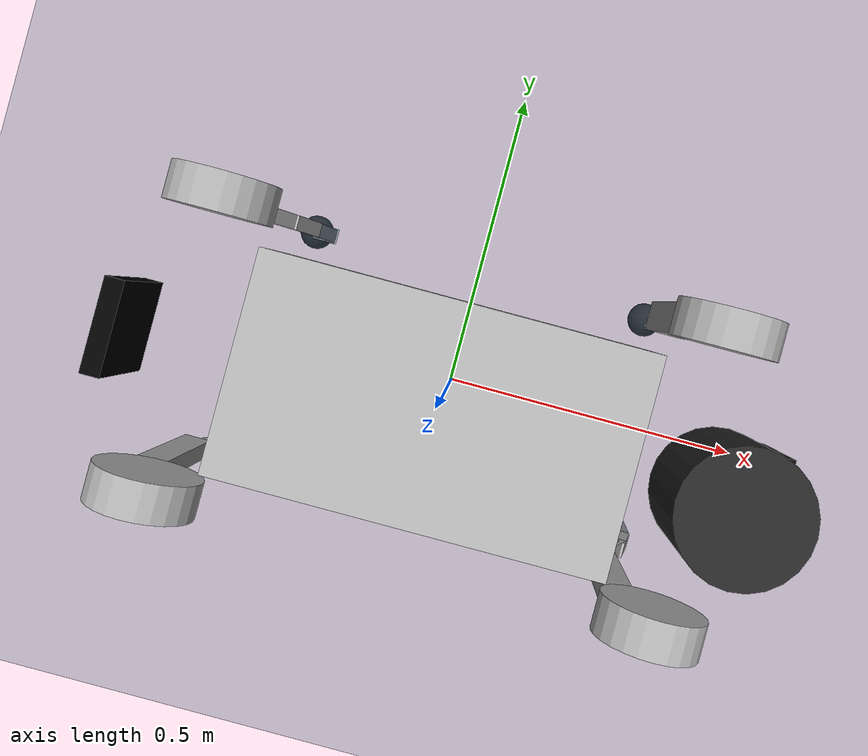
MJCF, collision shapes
<mujoco model="b2 flat scene">
  <include file="b2.xml"/>

  <statistic center="0 0 0.3" extent="1.5"/>

  <visual>
    <headlight diffuse="0.6 0.6 0.6" ambient="0.3 0.3 0.3" specular="0 0 0"/>
    <rgba haze="0.15 0.25 0.35 1"/>
    <global azimuth="90" elevation="-20"/>
  </visual>

  <asset>
    <texture type="skybox" builtin="gradient" rgb1="0.3 0.5 0.7" rgb2="0 0 0" width="512" height="3072"/>
    <texture type="2d" name="groundplane" builtin="checker" mark="edge" rgb1="0.2 0.3 0.4" rgb2="0.1 0.2 0.3"
      markrgb="0.8 0.8 0.8" width="300" height="300"/>
    <material name="groundplane" texture="groundplane" texuniform="true" texrepeat="5 5" reflectance="0.2"/>
  </asset>

  <worldbody>
    <light pos="0 0 1.5" dir="0 0 -1" directional="true"/>
    <geom name="floor" size="0 0 0.05" type="plane" material="groundplane" condim="3" friction="0.8 0.2 0.1"/>
  </worldbody>
</mujoco>

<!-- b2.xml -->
<mujoco model="b2">
  <compiler angle="radian" meshdir="meshes" autolimits="true"/>

  <default>
    <default class="b2">
      <geom type="mesh"/>
      <joint damping="0.5" armature="0.2"/>
      <default class="visual">
        <geom contype="0" conaffinity="0" group="2"/>
      </default>
      <default class="collision">
        <geom group="3" mass="0" density="0"/>
      </default>
      <site size="0.001" rgba="0.5 0.5 0.5 0.3" group="4"/>
    </default>
  </default>

  <asset>
    <mesh name="base_link" file="base_link.obj"/>
    <mesh name="logo_left" file="logo_left.obj"/>
    <mesh name="logo_right" file="logo_right.obj"/>
    <mesh name="unitree_ladar" file="unitree_ladar.obj"/>
    <mesh name="f_dc_link" file="f_dc_link.obj"/>
    <mesh name="r_dc_link" file="r_dc_link.obj"/>
    <mesh name="fake_imu_link" file="fake_imu_link.STL"/>
    <mesh name="fake_head_Link" file="fake_head_Link.STL"/>
    <mesh name="fake_tail_link" file="fake_tail_link.STL"/>
    <mesh name="FL_hip" file="FL_hip.obj"/>
    <mesh name="FL_thigh" file="FL_thigh.obj"/>
    <mesh name="FL_thigh_protect" file="FL_thigh_protect.obj"/>
    <mesh name="FL_calf" file="FL_calf.obj"/>
    <mesh name="FL_foot" file="FL_foot.obj"/>
    <mesh name="FR_hip" file="FR_hip.obj"/>
    <mesh name="FR_thigh" file="FR_thigh.obj"/>
    <mesh name="FR_thigh_protect" file="FR_thigh_protect.obj"/>
    <mesh name="FR_calf" file="FR_calf.obj"/>
    <mesh name="FR_foot" file="FR_foot.obj"/>
    <mesh name="RL_hip" file="RL_hip.obj"/>
    <mesh name="RL_thigh" file="RL_thigh.obj"/>
    <mesh name="RL_thigh_protect" file="RL_thigh_protect.obj"/>
    <mesh name="RL_calf" file="RL_calf.obj"/>
    <mesh name="RL_foot" file="RL_foot.obj"/>
    <mesh name="RR_hip" file="RR_hip.obj"/>
    <mesh name="RR_thigh" file="RR_thigh.obj"/>
    <mesh name="RR_thigh_protect" file="RR_thigh_protect.obj"/>
    <mesh name="RR_calf" file="RR_calf.obj"/>
    <mesh name="RR_foot" file="RR_foot.obj"/>
    <mesh name="f_oc_link" file="f_oc_link.obj"/>
    <mesh name="r_oc_link" file="r_oc_link.obj"/>
  </asset>
  <worldbody>
    <body name="base_link" pos="0 0 0.5" childclass="b2">
      <inertial pos="0.0212868 0.0045819 0.0106169" quat="0.00178111 0.675412 -0.000262894 0.737438" mass="35.86" diaginertia="1.73786 1.66448 0.343734"/>
      <joint name="floating_base_joint" type="free"/>
      <geom type="mesh" contype="0" conaffinity="0" group="1" density="0" rgba="0.7 0.7 0.7 1" mesh="base_link"/>
      <geom size="0.25 0.14 0.075" type="box" rgba="0.7 0.7 0.7 1" class="collision"/>
      <geom type="mesh" contype="0" conaffinity="0" group="1" density="0" rgba="1 1 1 1" mesh="logo_left"/>
      <geom type="mesh" contype="0" conaffinity="0" group="1" density="0" rgba="1 1 1 1" mesh="logo_right"/>
      <geom pos="0.34218 0 0.17851" type="mesh" contype="0" conaffinity="0" group="1" density="0" rgba="0.15 0.15 0.15 1" mesh="unitree_ladar"/>
      <geom size="0.076 0.08" pos="0.34218 0 0.15851" type="cylinder" rgba="0.15 0.15 0.15 1" class="collision"/>
      <geom pos="0.841724 -4.57659e-06 0.130379" quat="0.00244632 3.13845e-06 0.999997 1.29099e-06" type="mesh" contype="0" conaffinity="0" group="1" density="0" rgba="0 0 0 1" mesh="f_dc_link"/>
      <geom pos="-0.378319 0.000200109 -0.379902" quat="-1.30076e-06 -0.708662 5.35065e-07 0.705548" type="mesh" contype="0" conaffinity="0" group="1" density="0" rgba="0 0 0 1" mesh="r_dc_link"/>
      <geom pos="0 -0.02341 0.04927" type="mesh" contype="0" conaffinity="0" group="1" density="0" rgba="0 0 0 1" mesh="fake_imu_link"/>
      <geom type="mesh" contype="0" conaffinity="0" group="1" density="0" rgba="0 0 0 1" mesh="fake_head_Link"/>
      <geom size="0.02 0.06 0.07" pos="0.41 0 0.005" type="box" rgba="0 0 0 1" class="collision"/>
      <geom type="mesh" contype="0" conaffinity="0" group="1" density="0" rgba="0 0 0 1" mesh="fake_tail_link"/>
      <geom size="0.0125 0.06 0.07" pos="-0.405 0 0.005" type="box" rgba="0 0 0 1" class="collision"/>
      <geom pos="0.84158 -0.0134347 -0.0134347" quat="-3.89602e-06 1.29867e-06 0.707107 -0.707107" type="mesh" contype="0" conaffinity="0" group="1" density="0" rgba="0 0 0 1" mesh="f_oc_link"/>
      <geom pos="-0.00451008 0.0252504 -0.0262476" quat="0.707107 -0.707107 -1.29867e-06 -1.29867e-06" type="mesh" contype="0" conaffinity="0" group="1" density="0" rgba="0 0 0 1" mesh="r_oc_link"/>
      <site name="imu" pos="0 -0.02341 0.04927"/>
      <body name="FL_hip" pos="0.3285 0.072 0">
        <inertial pos="-0.00348459 -0.00896704 0" quat="0.511347 0.510967 0.488412 0.488763" mass="2.9464" diaginertia="0.00502561 0.00397571 0.00346037"/>
        <joint name="FL_hip_joint" pos="0 0 0" axis="1 0 0" range="-0.87 0.87"/>
        <geom type="mesh" contype="0" conaffinity="0" group="1" density="0" rgba="0.7 0.7 0.7 1" mesh="FL_hip"/>
        <geom size="0.07 0.025" pos="0 0.12 0" quat="0.707107 0.707107 0 0" type="cylinder" rgba="0.7 0.7 0.7 1" class="collision"/>
        <body name="FL_thigh" pos="0 0.11973 0">
          <inertial pos="-0.00592206 -0.0335174 -0.0545473" quat="0.910035 0.0855949 -0.000888135 0.405597" mass="4.8094" diaginertia="0.0640934 0.0634463 0.00699942"/>
          <joint name="FL_thigh_joint" pos="0 0 0" axis="0 1 0" range="-0.94 4.69"/>
          <geom type="mesh" contype="0" conaffinity="0" group="1" density="0" rgba="0.7 0.7 0.7 1" mesh="FL_thigh"/>
          <geom size="0.16 0.02225 0.027" pos="-0.025 0 -0.16" quat="0.707388 0 0.706825 0" type="box" rgba="0.7 0.7 0.7 1" class="collision"/>
          <geom type="mesh" contype="0" conaffinity="0" group="1" density="0" rgba="0.65 0.68 0.65 1" mesh="FL_thigh_protect"/>
          <body name="FL_calf" pos="0 -8.6984e-05 -0.35">
            <inertial pos="0.00792095 0 -0.180895" quat="0.70709 -0.00488772 -0.00488772 0.70709" mass="0.53" diaginertia="0.0169205 0.0167822 0.000404298"/>
            <joint name="FL_calf_joint" pos="0 0 0" axis="0 1 0" range="-2.82 -0.43"/>
            <geom type="mesh" contype="0" conaffinity="0" group="1" density="0" rgba="0.7 0.7 0.7 1" mesh="FL_calf"/>
            <geom size="0.05 0.01225 0.009" pos="-0.002 0 -0.03" quat="0.825336 0 0.564642 0" type="box" rgba="0.7 0.7 0.7 1" class="collision"/>
            <geom size="0.05 0.01225 0.009" pos="0.022 0 -0.1" quat="0.780707 0 0.624897 0" type="box" rgba="0.7 0.7 0.7 1" class="collision"/>
            <geom size="0.075 0.01225 0.0075" pos="0.036 0 -0.225" quat="0.721382 0 0.692537 0" type="box" rgba="0.7 0.7 0.7 1" class="collision"/>
            <geom size="0.025 0.014 0.0175" pos="0.023 0 -0.31" quat="0.540302 0 0.841471 0" type="box" rgba="0.7 0.7 0.7 1" class="collision"/>
            <geom pos="0 8.6986e-05 0" type="mesh" contype="0" conaffinity="0" group="1" density="0" rgba="0.15 0.15 0.15 1" mesh="FL_foot" friction="0.8 0.005 0.0001" solref="0.005 1" solimp="0.9 0.95 0.001"/>
            <geom size="0.032" pos="0 8.6986e-05 -0.35" quat="0.707388 0.706825 0 0" type="sphere" rgba="0.15 0.15 0.15 1" class="collision" friction="0.8 0.005 0.0001" solref="0.005 1" solimp="0.9 0.95 0.001"/>
          </body>
        </body>
      </body>
      <body name="FR_hip" pos="0.3285 -0.072 0">
        <inertial pos="-0.00844158 0.0100194 0.000239503" quat="0.476608 0.477229 0.518954 0.525151" mass="2.9464" diaginertia="0.00485575 0.00370656 0.00277186"/>
        <joint name="FR_hip_joint" pos="0 0 0" axis="1 0 0" range="-0.87 0.87"/>
        <geom type="mesh" contype="0" conaffinity="0" group="1" density="0" rgba="0.7 0.7 0.7 1" mesh="FR_hip"/>
        <geom size="0.07 0.025" pos="0 -0.12 0" quat="0.707107 0.707107 0 0" type="cylinder" rgba="0.7 0.7 0.7 1" class="collision"/>
        <body name="FR_thigh" pos="0 -0.11973 0">
          <inertial pos="-0.00592206 0.0335174 -0.0545473" quat="0.40566 -0.000894103 0.0855942 0.910007" mass="4.8094" diaginertia="0.0640936 0.0634464 0.00699948"/>
          <joint name="FR_thigh_joint" pos="0 0 0" axis="0 1 0" range="-0.94 4.69"/>
          <geom type="mesh" contype="0" conaffinity="0" group="1" density="0" rgba="0.7 0.7 0.7 1" mesh="FR_thigh"/>
          <geom size="0.125 0.014 0.02" pos="-0.03 0 -0.2" quat="0.707388 0 0.706825 0" type="box" rgba="0.7 0.7 0.7 1" class="collision"/>
          <geom type="mesh" contype="0" conaffinity="0" group="1" density="0" rgba="0.65 0.68 0.65 1" mesh="FR_thigh_protect"/>
          <body name="FR_calf" pos="0 8.6986e-05 -0.35">
            <inertial pos="0.00792095 0 -0.180895" quat="0.70709 -0.00488772 -0.00488772 0.70709" mass="0.53" diaginertia="0.0169205 0.0167822 0.000404298"/>
            <joint name="FR_calf_joint" pos="0 0 0" axis="0 1 0" range="-2.82 -0.43"/>
            <geom type="mesh" contype="0" conaffinity="0" group="1" density="0" rgba="0.7 0.7 0.7 1" mesh="FR_calf"/>
            <geom size="0.05 0.01225 0.009" pos="-0.002 0 -0.03" quat="0.825336 0 0.564642 0" type="box" rgba="0.7 0.7 0.7 1" class="collision"/>
            <geom size="0.05 0.01225 0.009" pos="0.022 0 -0.1" quat="0.780707 0 0.624897 0" type="box" rgba="0.7 0.7 0.7 1" class="collision"/>
            <geom size="0.075 0.01225 0.0075" pos="0.036 0 -0.225" quat="0.721382 0 0.692537 0" type="box" rgba="0.7 0.7 0.7 1" class="collision"/>
            <geom size="0.025 0.014 0.0175" pos="0.023 0 -0.31" quat="0.540302 0 0.841471 0" type="box" rgba="0.7 0.7 0.7 1" class="collision"/>
            <geom type="mesh" contype="0" conaffinity="0" group="1" density="0" rgba="0.15 0.15 0.15 1" mesh="FR_foot" friction="0.8 0.005 0.0001" solref="0.005 1" solimp="0.9 0.95 0.001"/>
            <geom size="0.032" pos="0 8.6986e-05 -0.35" quat="0.707388 0.706825 0 0" type="sphere" rgba="0.15 0.15 0.15 1" class="collision" friction="0.8 0.005 0.0001" solref="0.005 1" solimp="0.9 0.95 0.001"/>
          </body>
        </body>
      </body>
      <body name="RL_hip" pos="-0.3285 0.072 0">
        <inertial pos="0.00844158 -0.0100194 0.000239503" quat="0.477229 0.476608 0.525151 0.518954" mass="2.9464" diaginertia="0.00485575 0.00370656 0.00277186"/>
        <joint name="RL_hip_joint" pos="0 0 0" axis="1 0 0" range="-0.87 0.87"/>
        <geom type="mesh" contype="0" conaffinity="0" group="1" density="0" rgba="0.7 0.7 0.7 1" mesh="RL_hip"/>
        <geom size="0.07 0.025" pos="0 0.12 0" quat="0.707107 0.707107 0 0" type="cylinder" rgba="0.7 0.7 0.7 1" class="collision"/>
        <body name="RL_thigh" pos="0 0.11973 0">
          <inertial pos="-0.00592206 -0.0335174 -0.0545473" quat="0.910007 0.0855942 -0.000894103 0.40566" mass="4.8094" diaginertia="0.0640936 0.0634464 0.00699948"/>
          <joint name="RL_thigh_joint" pos="0 0 0" axis="0 1 0" range="-0.94 4.69"/>
          <geom type="mesh" contype="0" conaffinity="0" group="1" density="0" rgba="0.7 0.7 0.7 1" mesh="RL_thigh"/>
          <geom size="0.125 0.014 0.02" pos="-0.03 0 -0.2" quat="0.707388 0 0.706825 0" type="box" rgba="0.7 0.7 0.7 1" class="collision"/>
          <geom type="mesh" contype="0" conaffinity="0" group="1" density="0" rgba="0.65 0.68 0.65 1" mesh="RL_thigh_protect"/>
          <body name="RL_calf" pos="0 -8.6984e-05 -0.35">
            <inertial pos="0.00792095 0 -0.180895" quat="0.70709 -0.00488772 -0.00488772 0.70709" mass="0.53" diaginertia="0.0169205 0.0167822 0.000404298"/>
            <joint name="RL_calf_joint" pos="0 0 0" axis="0 1 0" range="-2.82 -0.43"/>
            <geom type="mesh" contype="0" conaffinity="0" group="1" density="0" rgba="0.7 0.7 0.7 1" mesh="RL_calf"/>
            <geom size="0.05 0.01225 0.009" pos="-0.002 0 -0.03" quat="0.825336 0 0.564642 0" type="box" rgba="0.7 0.7 0.7 1" class="collision"/>
            <geom size="0.05 0.01225 0.009" pos="0.022 0 -0.1" quat="0.780707 0 0.624897 0" type="box" rgba="0.7 0.7 0.7 1" class="collision"/>
            <geom size="0.075 0.01225 0.0075" pos="0.036 0 -0.225" quat="0.721382 0 0.692537 0" type="box" rgba="0.7 0.7 0.7 1" class="collision"/>
            <geom size="0.025 0.014 0.0175" pos="0.023 0 -0.31" quat="0.540302 0 0.841471 0" type="box" rgba="0.7 0.7 0.7 1" class="collision"/>
            <geom pos="0 8.6986e-05 0" type="mesh" contype="0" conaffinity="0" group="1" density="0" rgba="0.15 0.15 0.15 1" mesh="RL_foot" friction="0.8 0.005 0.0001" solref="0.005 1" solimp="0.9 0.95 0.001"/>
            <geom size="0.032" pos="0 8.6986e-05 -0.35" quat="0.707388 0.706825 0 0" type="sphere" rgba="0.15 0.15 0.15 1" class="collision" friction="0.8 0.005 0.0001" solref="0.005 1" solimp="0.9 0.95 0.001"/>
          </body>
        </body>
      </body>
      <body name="RR_hip" pos="-0.3285 -0.072 0">
        <inertial pos="0.00348459 0.00896704 0" quat="0.510967 0.511347 0.488763 0.488412" mass="2.9464" diaginertia="0.00502561 0.00397571 0.00346037"/>
        <joint name="RR_hip_joint" pos="0 0 0" axis="1 0 0" range="-0.87 0.87"/>
        <geom type="mesh" contype="0" conaffinity="0" group="1" density="0" rgba="0.7 0.7 0.7 1" mesh="RR_hip"/>
        <geom size="0.07 0.025" pos="0 -0.12 0" quat="0.707107 0.707107 0 0" type="cylinder" rgba="0.7 0.7 0.7 1" class="collision"/>
        <body name="RR_thigh" pos="0 -0.11973 0">
          <inertial pos="-0.00592206 0.0335174 -0.0545473" quat="0.405597 -0.000888135 0.0855949 0.910035" mass="4.8094" diaginertia="0.0640934 0.0634463 0.00699942"/>
          <joint name="RR_thigh_joint" pos="0 0 0" axis="0 1 0" range="-0.94 4.69"/>
          <geom type="mesh" contype="0" conaffinity="0" group="1" density="0" rgba="0.7 0.7 0.7 1" mesh="RR_thigh"/>
          <geom size="0.125 0.014 0.02" pos="-0.03 0 -0.2" quat="0.707388 0 0.706825 0" type="box" rgba="0.7 0.7 0.7 1" class="collision"/>
          <geom type="mesh" contype="0" conaffinity="0" group="1" density="0" rgba="0.65 0.68 0.65 1" mesh="RR_thigh_protect"/>
          <body name="RR_calf" pos="0 8.6986e-05 -0.35">
            <inertial pos="0.00792095 0 -0.180895" quat="0.70709 -0.00488772 -0.00488772 0.70709" mass="0.53" diaginertia="0.0169205 0.0167822 0.000404298"/>
            <joint name="RR_calf_joint" pos="0 0 0" axis="0 1 0" range="-2.82 -0.43"/>
            <geom type="mesh" contype="0" conaffinity="0" group="1" density="0" rgba="0.7 0.7 0.7 1" mesh="RR_calf"/>
            <geom size="0.05 0.01225 0.009" pos="-0.002 0 -0.03" quat="0.825336 0 0.564642 0" type="box" rgba="0.7 0.7 0.7 1" class="collision"/>
            <geom size="0.05 0.01225 0.009" pos="0.022 0 -0.1" quat="0.780707 0 0.624897 0" type="box" rgba="0.7 0.7 0.7 1" class="collision"/>
            <geom size="0.075 0.01225 0.0075" pos="0.036 0 -0.225" quat="0.721382 0 0.692537 0" type="box" rgba="0.7 0.7 0.7 1" class="collision"/>
            <geom size="0.025 0.014 0.0175" pos="0.023 0 -0.31" quat="0.540302 0 0.841471 0" type="box" rgba="0.7 0.7 0.7 1" class="collision"/>
            <geom pos="0 -8.6984e-05 0" type="mesh" contype="0" conaffinity="0" group="1" density="0" rgba="0.15 0.15 0.15 1" mesh="RR_foot" friction="0.8 0.005 0.0001" solref="0.005 1" solimp="0.9 0.95 0.001"/>
            <geom size="0.032" pos="0 8.6986e-05 -0.35" quat="0.707388 0.706825 0 0" type="sphere" rgba="0.15 0.15 0.15 1" class="collision" friction="0.8 0.005 0.0001" solref="0.005 1" solimp="0.9 0.95 0.001"/>
          </body>
        </body>
      </body>
    </body>
  </worldbody>

  <actuator>
    <motor class="b2" ctrlrange="-200 200"  name="FR_hip" joint="FR_hip_joint"/>
    <motor class="b2" ctrlrange="-200 200"  name="FR_thigh" joint="FR_thigh_joint"/>
    <motor class="b2" ctrlrange="-320 320"  name="FR_calf" joint="FR_calf_joint"/>
    <motor class="b2" ctrlrange="-200 200"  name="FL_hip" joint="FL_hip_joint"/>
    <motor class="b2" ctrlrange="-200 200"  name="FL_thigh" joint="FL_thigh_joint"/>
    <motor class="b2" ctrlrange="-320 320" name="FL_calf" joint="FL_calf_joint"/>
    <motor class="b2" ctrlrange="-200 200"  name="RR_hip" joint="RR_hip_joint"/>
    <motor class="b2" ctrlrange="-200 200"  name="RR_thigh" joint="RR_thigh_joint"/>
    <motor class="b2" ctrlrange="-320 320" name="RR_calf" joint="RR_calf_joint"/>
    <motor class="b2" ctrlrange="-200 200"  name="RL_hip" joint="RL_hip_joint"/>
    <motor class="b2" ctrlrange="-200 200"  name="RL_thigh" joint="RL_thigh_joint"/>
    <motor class="b2" ctrlrange="-320 320" name="RL_calf" joint="RL_calf_joint"/>
  </actuator>

  <sensor>
    <jointpos name="FR_hip_pos" joint="FR_hip_joint" />
    <jointpos name="FR_thigh_pos" joint="FR_thigh_joint" />
    <jointpos name="FR_calf_pos" joint="FR_calf_joint" />
    <jointpos name="FL_hip_pos" joint="FL_hip_joint" />
    <jointpos name="FL_thigh_pos" joint="FL_thigh_joint" />
    <jointpos name="FL_calf_pos" joint="FL_calf_joint" />
    <jointpos name="RR_hip_pos" joint="RR_hip_joint" />
    <jointpos name="RR_thigh_pos" joint="RR_thigh_joint" />
    <jointpos name="RR_calf_pos" joint="RR_calf_joint" />
    <jointpos name="RL_hip_pos" joint="RL_hip_joint" />
    <jointpos name="RL_thigh_pos" joint="RL_thigh_joint" />
    <jointpos name="RL_calf_pos" joint="RL_calf_joint" />

    <jointvel name="FR_hip_vel" joint="FR_hip_joint" />
    <jointvel name="FR_thigh_vel" joint="FR_thigh_joint" />
    <jointvel name="FR_calf_vel" joint="FR_calf_joint" />
    <jointvel name="FL_hip_vel" joint="FL_hip_joint" />
    <jointvel name="FL_thigh_vel" joint="FL_thigh_joint" />
    <jointvel name="FL_calf_vel" joint="FL_calf_joint" />
    <jointvel name="RR_hip_vel" joint="RR_hip_joint" />
    <jointvel name="RR_thigh_vel" joint="RR_thigh_joint" />
    <jointvel name="RR_calf_vel" joint="RR_calf_joint" />
    <jointvel name="RL_hip_vel" joint="RL_hip_joint" />
    <jointvel name="RL_thigh_vel" joint="RL_thigh_joint" />
    <jointvel name="RL_calf_vel" joint="RL_calf_joint" />

    <framequat name="body_quat" objtype="site" objname="imu" />
    <gyro name="body_gyro" site="imu" />
    <accelerometer name="body_acc" site="imu" />
    <framepos name="body_pos" objtype="site" objname="imu" />
  </sensor>

  <keyframe>
    <key name="home" qpos="0 0 0.5 1 0 0 0 0 1.28 -2.84 0 1.28 -2.84 0 1.28 -2.84 0 1.28 -2.84"
      ctrl="0 1.28 -2.84 0 1.28 -2.84 0 1.28 -2.84 0 1.28 -2.84"/>
  </keyframe>

</mujoco>
